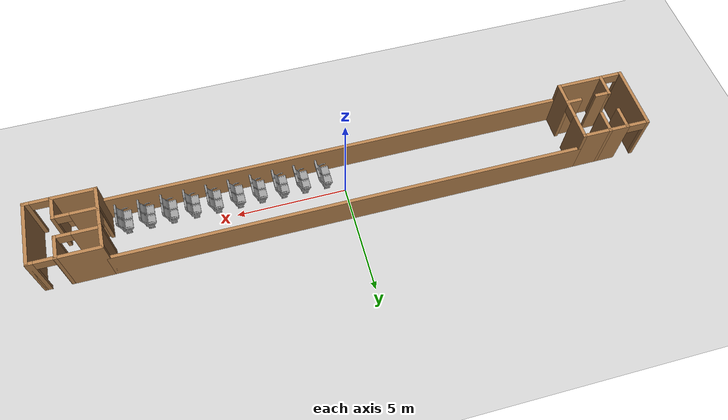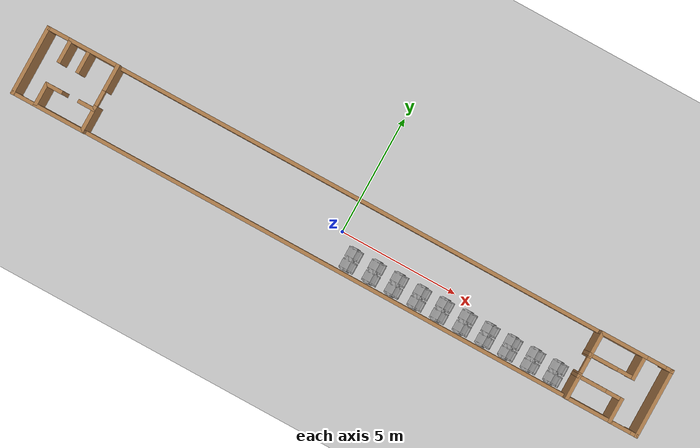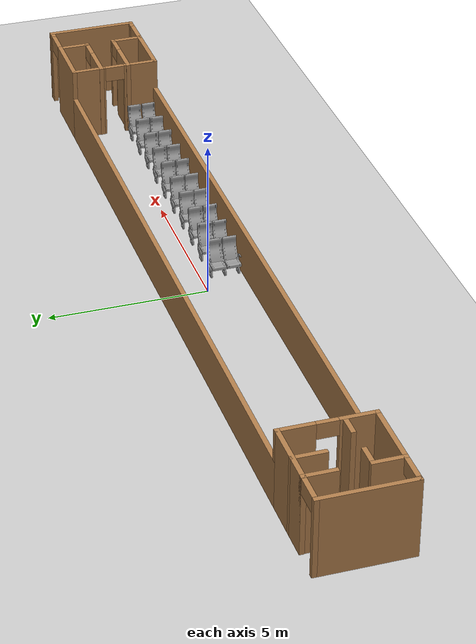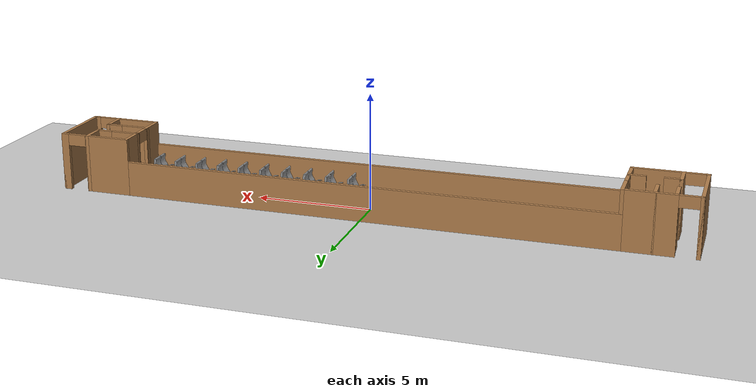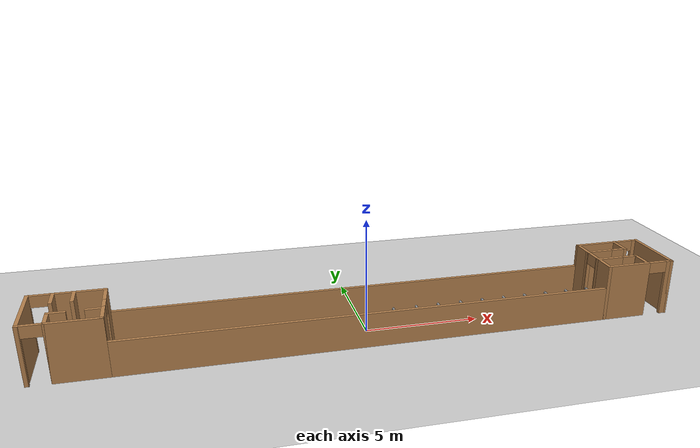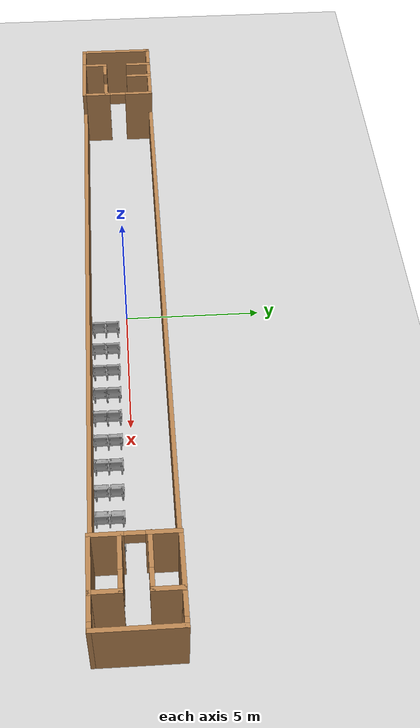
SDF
<sdf version="1.7">
 <world name="default">
  <model name="ground_plane">
   <static>1</static>
   <link name="link">
    <collision name="collision">
     <geometry><plane><normal>0 0 1</normal><size>100 100</size></plane></geometry>
     <surface><friction><ode><mu>100</mu><mu2>50</mu2></ode></friction></surface>
    </collision>
    <visual name="visual">
     <cast_shadows>0</cast_shadows>
     <geometry><plane><normal>0 0 1</normal><size>100 100</size></plane></geometry>
     <material>
      <script><uri>file://media/materials/scripts/gazebo.material</uri><name>Gazebo/Grey</name></script>
     </material>
    </visual>
   </link>
  </model>
  <model name="tejas_train">
   <pose>0.005564 0.000165 0 0 -0 0</pose>
   <link name="Wall_11">
    <pose>-10.5 0 0 0 -0 -1.5708</pose>
    <visual name="Wall_11_Visual_0">
     <pose>-0.902332 0 1.25 0 -0 0</pose>
     <geometry><box><size>1.14533 0.15 2.5</size></box></geometry>
     <material>
      <script><uri>file://media/materials/scripts/gazebo.material</uri><name>Gazebo/Wood</name></script>
      <ambient>1 1 1 1</ambient>
     </material>
     <meta><layer>0</layer></meta>
    </visual>
    <collision name="Wall_11_Collision_0">
     <geometry><box><size>1.14533 0.15 2.5</size></box></geometry>
     <pose>-0.902332 0 1.25 0 -0 0</pose>
    </collision>
    <visual name="Wall_11_Visual_1">
     <pose>0.897668 0 1.25 0 -0 0</pose>
     <geometry><box><size>1.15467 0.15 2.5</size></box></geometry>
     <material>
      <script><uri>file://media/materials/scripts/gazebo.material</uri><name>Gazebo/Wood</name></script>
      <ambient>1 1 1 1</ambient>
     </material>
     <meta><layer>0</layer></meta>
    </visual>
    <collision name="Wall_11_Collision_1">
     <geometry><box><size>1.15467 0.15 2.5</size></box></geometry>
     <pose>0.897668 0 1.25 0 -0 0</pose>
    </collision>
    <visual name="Wall_11_Visual_2">
     <pose>-0.004665 0 2.25 0 -0 0</pose>
     <geometry><box><size>0.65 0.15 0.5</size></box></geometry>
     <material>
      <script><uri>file://media/materials/scripts/gazebo.material</uri><name>Gazebo/Wood</name></script>
      <ambient>1 1 1 1</ambient>
     </material>
     <meta><layer>0</layer></meta>
    </visual>
    <collision name="Wall_11_Collision_2">
     <geometry><box><size>0.65 0.15 0.5</size></box></geometry>
     <pose>-0.004665 0 2.25 0 -0 0</pose>
    </collision>
   </link>
   <link name="Wall_13">
    <pose>10.5 0 0 0 -0 -1.5708</pose>
    <visual name="Wall_13_Visual_0">
     <pose>-0.902332 0 1.25 0 -0 0</pose>
     <geometry><box><size>1.14533 0.15 2.5</size></box></geometry>
     <material>
      <script><uri>file://media/materials/scripts/gazebo.material</uri><name>Gazebo/Wood</name></script>
      <ambient>1 1 1 1</ambient>
     </material>
     <meta><layer>0</layer></meta>
    </visual>
    <collision name="Wall_13_Collision_0">
     <geometry><box><size>1.14533 0.15 2.5</size></box></geometry>
     <pose>-0.902332 0 1.25 0 -0 0</pose>
    </collision>
    <visual name="Wall_13_Visual_1">
     <pose>0.897668 0 1.25 0 -0 0</pose>
     <geometry><box><size>1.15467 0.15 2.5</size></box></geometry>
     <material>
      <script><uri>file://media/materials/scripts/gazebo.material</uri><name>Gazebo/Wood</name></script>
      <ambient>1 1 1 1</ambient>
     </material>
     <meta><layer>0</layer></meta>
    </visual>
    <collision name="Wall_13_Collision_1">
     <geometry><box><size>1.15467 0.15 2.5</size></box></geometry>
     <pose>0.897668 0 1.25 0 -0 0</pose>
    </collision>
    <visual name="Wall_13_Visual_2">
     <pose>-0.004665 0 2.25 0 -0 0</pose>
     <geometry><box><size>0.65 0.15 0.5</size></box></geometry>
     <material>
      <script><uri>file://media/materials/scripts/gazebo.material</uri><name>Gazebo/Wood</name></script>
      <ambient>1 1 1 1</ambient>
     </material>
     <meta><layer>0</layer></meta>
    </visual>
    <collision name="Wall_13_Collision_2">
     <geometry><box><size>0.65 0.15 0.5</size></box></geometry>
     <pose>-0.004665 0 2.25 0 -0 0</pose>
    </collision>
   </link>
   <link name="Wall_15">
    <pose>-12 1.4 0 0 -0 3.14159</pose>
    <visual name="Wall_15_Visual_0">
     <pose>-0.479459 0 1.25 0 -0 0</pose>
     <geometry><box><size>2.19108 0.15 2.5</size></box></geometry>
     <material>
      <script><uri>file://media/materials/scripts/gazebo.material</uri><name>Gazebo/Wood</name></script>
      <ambient>1 1 1 1</ambient>
     </material>
     <meta><layer>0</layer></meta>
    </visual>
    <collision name="Wall_15_Collision_0">
     <geometry><box><size>2.19108 0.15 2.5</size></box></geometry>
     <pose>-0.479459 0 1.25 0 -0 0</pose>
    </collision>
    <visual name="Wall_15_Visual_1">
     <pose>1.49554 0 1.25 0 -0 0</pose>
     <geometry><box><size>0.158918 0.15 2.5</size></box></geometry>
     <material>
      <script><uri>file://media/materials/scripts/gazebo.material</uri><name>Gazebo/Wood</name></script>
      <ambient>1 1 1 1</ambient>
     </material>
     <meta><layer>0</layer></meta>
    </visual>
    <collision name="Wall_15_Collision_1">
     <geometry><box><size>0.158918 0.15 2.5</size></box></geometry>
     <pose>1.49554 0 1.25 0 -0 0</pose>
    </collision>
    <visual name="Wall_15_Visual_2">
     <pose>1.01608 0 2.25 0 -0 0</pose>
     <geometry><box><size>0.8 0.15 0.5</size></box></geometry>
     <material>
      <script><uri>file://media/materials/scripts/gazebo.material</uri><name>Gazebo/Wood</name></script>
      <ambient>1 1 1 1</ambient>
     </material>
     <meta><layer>0</layer></meta>
    </visual>
    <collision name="Wall_15_Collision_2">
     <geometry><box><size>0.8 0.15 0.5</size></box></geometry>
     <pose>1.01608 0 2.25 0 -0 0</pose>
    </collision>
   </link>
   <link name="Wall_17">
    <pose>-12 -1.4 0 0 -0 3.14159</pose>
    <visual name="Wall_17_Visual_0">
     <pose>-0.487891 0 1.25 0 -0 0</pose>
     <geometry><box><size>2.17422 0.15 2.5</size></box></geometry>
     <material>
      <script><uri>file://media/materials/scripts/gazebo.material</uri><name>Gazebo/Wood</name></script>
      <ambient>1 1 1 1</ambient>
     </material>
     <meta><layer>0</layer></meta>
    </visual>
    <collision name="Wall_17_Collision_0">
     <geometry><box><size>2.17422 0.15 2.5</size></box></geometry>
     <pose>-0.487891 0 1.25 0 -0 0</pose>
    </collision>
    <visual name="Wall_17_Visual_1">
     <pose>1.48711 0 1.25 0 -0 0</pose>
     <geometry><box><size>0.175782 0.15 2.5</size></box></geometry>
     <material>
      <script><uri>file://media/materials/scripts/gazebo.material</uri><name>Gazebo/Wood</name></script>
      <ambient>1 1 1 1</ambient>
     </material>
     <meta><layer>0</layer></meta>
    </visual>
    <collision name="Wall_17_Collision_1">
     <geometry><box><size>0.175782 0.15 2.5</size></box></geometry>
     <pose>1.48711 0 1.25 0 -0 0</pose>
    </collision>
    <visual name="Wall_17_Visual_2">
     <pose>0.999218 0 2.25 0 -0 0</pose>
     <geometry><box><size>0.8 0.15 0.5</size></box></geometry>
     <material>
      <script><uri>file://media/materials/scripts/gazebo.material</uri><name>Gazebo/Wood</name></script>
      <ambient>1 1 1 1</ambient>
     </material>
     <meta><layer>0</layer></meta>
    </visual>
    <collision name="Wall_17_Collision_2">
     <geometry><box><size>0.8 0.15 0.5</size></box></geometry>
     <pose>0.999218 0 2.25 0 -0 0</pose>
    </collision>
   </link>
   <link name="Wall_19">
    <collision name="Wall_19_Collision">
     <geometry><box><size>1.05 0.15 2.5</size></box></geometry>
     <pose>0 0 1.25 0 -0 0</pose>
    </collision>
    <visual name="Wall_19_Visual">
     <pose>0 0 1.25 0 -0 0</pose>
     <geometry><box><size>1.05 0.15 2.5</size></box></geometry>
     <material>
      <script><uri>file://media/materials/scripts/gazebo.material</uri><name>Gazebo/Wood</name></script>
      <ambient>1 1 1 1</ambient>
     </material>
     <meta><layer>0</layer></meta>
    </visual>
    <pose>-11.718 0.95 0 0 -0 -1.5708</pose>
   </link>
   <link name="Wall_21">
    <collision name="Wall_21_Collision">
     <geometry><box><size>1.05 0.15 2.5</size></box></geometry>
     <pose>0 0 1.25 0 -0 0</pose>
    </collision>
    <visual name="Wall_21_Visual">
     <pose>0 0 1.25 0 -0 0</pose>
     <geometry><box><size>1.05 0.15 2.5</size></box></geometry>
     <material>
      <script><uri>file://media/materials/scripts/gazebo.material</uri><name>Gazebo/Wood</name></script>
      <ambient>1 1 1 1</ambient>
     </material>
     <meta><layer>0</layer></meta>
    </visual>
    <pose>-12.527 -0.95 0 0 -0 1.5708</pose>
   </link>
   <link name="Wall_23">
    <collision name="Wall_23_Collision">
     <geometry><box><size>1.05 0.15 2.5</size></box></geometry>
     <pose>0 0 1.25 0 -0 0</pose>
    </collision>
    <visual name="Wall_23_Visual">
     <pose>0 0 1.25 0 -0 0</pose>
     <geometry><box><size>1.05 0.15 2.5</size></box></geometry>
     <material>
      <script><uri>file://media/materials/scripts/gazebo.material</uri><name>Gazebo/Wood</name></script>
      <ambient>1 1 1 1</ambient>
     </material>
     <meta><layer>0</layer></meta>
    </visual>
    <pose>-12.527 0.95 0 0 -0 -1.5708</pose>
   </link>
   <link name="Wall_27">
    <collision name="Wall_27_Collision">
     <geometry><box><size>0.75 0.15 2.5</size></box></geometry>
     <pose>0 0 1.25 0 -0 0</pose>
    </collision>
    <visual name="Wall_27_Visual">
     <pose>0 0 1.25 0 -0 0</pose>
     <geometry><box><size>0.75 0.15 2.5</size></box></geometry>
     <material>
      <script><uri>file://media/materials/scripts/gazebo.material</uri><name>Gazebo/Wood</name></script>
      <ambient>1 1 1 1</ambient>
     </material>
     <meta><layer>0</layer></meta>
    </visual>
    <pose>-12.227 -0.5 0 0 -0 0</pose>
   </link>
   <link name="Wall_29">
    <collision name="Wall_29_Collision">
     <geometry><box><size>0.75 0.15 2.5</size></box></geometry>
     <pose>0 0 1.25 0 -0 0</pose>
    </collision>
    <visual name="Wall_29_Visual">
     <pose>0 0 1.25 0 -0 0</pose>
     <geometry><box><size>0.75 0.15 2.5</size></box></geometry>
     <material>
      <script><uri>file://media/materials/scripts/gazebo.material</uri><name>Gazebo/Wood</name></script>
      <ambient>1 1 1 1</ambient>
     </material>
     <meta><layer>0</layer></meta>
    </visual>
    <pose>-10.8034 -0.478648 0 0 -0 3.14159</pose>
   </link>
   <link name="Wall_31">
    <collision name="Wall_31_Collision">
     <geometry><box><size>2.95 0.15 2.5</size></box></geometry>
     <pose>0 0 1.25 0 -0 0</pose>
    </collision>
    <visual name="Wall_31_Visual">
     <pose>0 0 1.25 0 -0 0</pose>
     <geometry><box><size>2.95 0.15 2.5</size></box></geometry>
     <material>
      <script><uri>file://media/materials/scripts/gazebo.material</uri><name>Gazebo/Wood</name></script>
      <ambient>1 1 1 1</ambient>
     </material>
     <meta><layer>0</layer></meta>
    </visual>
    <pose>-13.5 0 0 0 -0 -1.5708</pose>
   </link>
   <link name="Wall_35">
    <pose>12 1.4 0 0 -0 0</pose>
    <visual name="Wall_35_Visual_0">
     <pose>-0.569532 0 1.25 0 -0 0</pose>
     <geometry><box><size>2.01094 0.15 2.5</size></box></geometry>
     <material>
      <script><uri>file://media/materials/scripts/gazebo.material</uri><name>Gazebo/Wood</name></script>
      <ambient>1 1 1 1</ambient>
     </material>
     <meta><layer>0</layer></meta>
    </visual>
    <collision name="Wall_35_Collision_0">
     <geometry><box><size>2.01094 0.15 2.5</size></box></geometry>
     <pose>-0.569532 0 1.25 0 -0 0</pose>
    </collision>
    <visual name="Wall_35_Visual_1">
     <pose>1.40547 0 1.25 0 -0 0</pose>
     <geometry><box><size>0.339064 0.15 2.5</size></box></geometry>
     <material>
      <script><uri>file://media/materials/scripts/gazebo.material</uri><name>Gazebo/Wood</name></script>
      <ambient>1 1 1 1</ambient>
     </material>
     <meta><layer>0</layer></meta>
    </visual>
    <collision name="Wall_35_Collision_1">
     <geometry><box><size>0.339064 0.15 2.5</size></box></geometry>
     <pose>1.40547 0 1.25 0 -0 0</pose>
    </collision>
    <visual name="Wall_35_Visual_2">
     <pose>0.835936 0 2.25 0 -0 0</pose>
     <geometry><box><size>0.8 0.15 0.5</size></box></geometry>
     <material>
      <script><uri>file://media/materials/scripts/gazebo.material</uri><name>Gazebo/Wood</name></script>
      <ambient>1 1 1 1</ambient>
     </material>
     <meta><layer>0</layer></meta>
    </visual>
    <collision name="Wall_35_Collision_2">
     <geometry><box><size>0.8 0.15 0.5</size></box></geometry>
     <pose>0.835936 0 2.25 0 -0 0</pose>
    </collision>
   </link>
   <link name="Wall_37">
    <pose>12 -1.4 0 0 -0 0</pose>
    <visual name="Wall_37_Visual_0">
     <pose>-0.569532 0 1.25 0 -0 0</pose>
     <geometry><box><size>2.01094 0.15 2.5</size></box></geometry>
     <material>
      <script><uri>file://media/materials/scripts/gazebo.material</uri><name>Gazebo/Wood</name></script>
      <ambient>1 1 1 1</ambient>
     </material>
     <meta><layer>0</layer></meta>
    </visual>
    <collision name="Wall_37_Collision_0">
     <geometry><box><size>2.01094 0.15 2.5</size></box></geometry>
     <pose>-0.569532 0 1.25 0 -0 0</pose>
    </collision>
    <visual name="Wall_37_Visual_1">
     <pose>1.40547 0 1.25 0 -0 0</pose>
     <geometry><box><size>0.339064 0.15 2.5</size></box></geometry>
     <material>
      <script><uri>file://media/materials/scripts/gazebo.material</uri><name>Gazebo/Wood</name></script>
      <ambient>1 1 1 1</ambient>
     </material>
     <meta><layer>0</layer></meta>
    </visual>
    <collision name="Wall_37_Collision_1">
     <geometry><box><size>0.339064 0.15 2.5</size></box></geometry>
     <pose>1.40547 0 1.25 0 -0 0</pose>
    </collision>
    <visual name="Wall_37_Visual_2">
     <pose>0.835936 0 2.25 0 -0 0</pose>
     <geometry><box><size>0.8 0.15 0.5</size></box></geometry>
     <material>
      <script><uri>file://media/materials/scripts/gazebo.material</uri><name>Gazebo/Wood</name></script>
      <ambient>1 1 1 1</ambient>
     </material>
     <meta><layer>0</layer></meta>
    </visual>
    <collision name="Wall_37_Collision_2">
     <geometry><box><size>0.8 0.15 0.5</size></box></geometry>
     <pose>0.835936 0 2.25 0 -0 0</pose>
    </collision>
   </link>
   <link name="Wall_39">
    <pose>11.417 0.466 0 0 -0 0</pose>
    <visual name="Wall_39_Visual_0">
     <pose>-0.378988 0 1.25 0 -0 0</pose>
     <geometry><box><size>1.24202 0.15 2.5</size></box></geometry>
     <material>
      <script><uri>file://media/materials/scripts/gazebo.material</uri><name>Gazebo/Wood</name></script>
      <ambient>1 1 1 1</ambient>
     </material>
     <meta><layer>0</layer></meta>
    </visual>
    <collision name="Wall_39_Collision_0">
     <geometry><box><size>1.24202 0.15 2.5</size></box></geometry>
     <pose>-0.378988 0 1.25 0 -0 0</pose>
    </collision>
    <visual name="Wall_39_Visual_1">
     <pose>0.921012 0 1.25 0 -0 0</pose>
     <geometry><box><size>0.157975 0.15 2.5</size></box></geometry>
     <material>
      <script><uri>file://media/materials/scripts/gazebo.material</uri><name>Gazebo/Wood</name></script>
      <ambient>1 1 1 1</ambient>
     </material>
     <meta><layer>0</layer></meta>
    </visual>
    <collision name="Wall_39_Collision_1">
     <geometry><box><size>0.157975 0.15 2.5</size></box></geometry>
     <pose>0.921012 0 1.25 0 -0 0</pose>
    </collision>
    <visual name="Wall_39_Visual_2">
     <pose>0.542025 0 2.25 0 -0 0</pose>
     <geometry><box><size>0.6 0.15 0.5</size></box></geometry>
     <material>
      <script><uri>file://media/materials/scripts/gazebo.material</uri><name>Gazebo/Wood</name></script>
      <ambient>1 1 1 1</ambient>
     </material>
     <meta><layer>0</layer></meta>
    </visual>
    <collision name="Wall_39_Collision_2">
     <geometry><box><size>0.6 0.15 0.5</size></box></geometry>
     <pose>0.542025 0 2.25 0 -0 0</pose>
    </collision>
   </link>
   <link name="Wall_40">
    <collision name="Wall_40_Collision">
     <geometry><box><size>1.084 0.15 2.5</size></box></geometry>
     <pose>0 0 1.25 0 -0 0</pose>
    </collision>
    <visual name="Wall_40_Visual">
     <pose>0 0 1.25 0 -0 0</pose>
     <geometry><box><size>1.084 0.15 2.5</size></box></geometry>
     <material>
      <script><uri>file://media/materials/scripts/gazebo.material</uri><name>Gazebo/Wood</name></script>
      <ambient>1 1 1 1</ambient>
     </material>
     <meta><layer>0</layer></meta>
    </visual>
    <pose>12.342 0.933 0 0 -0 1.5708</pose>
   </link>
   <link name="Wall_42">
    <pose>11.417 -0.466 0 0 -0 0</pose>
    <visual name="Wall_42_Visual_0">
     <pose>-0.378988 0 1.25 0 -0 0</pose>
     <geometry><box><size>1.24202 0.15 2.5</size></box></geometry>
     <material>
      <script><uri>file://media/materials/scripts/gazebo.material</uri><name>Gazebo/Wood</name></script>
      <ambient>1 1 1 1</ambient>
     </material>
     <meta><layer>0</layer></meta>
    </visual>
    <collision name="Wall_42_Collision_0">
     <geometry><box><size>1.24202 0.15 2.5</size></box></geometry>
     <pose>-0.378988 0 1.25 0 -0 0</pose>
    </collision>
    <visual name="Wall_42_Visual_1">
     <pose>0.921012 0 1.25 0 -0 0</pose>
     <geometry><box><size>0.157975 0.15 2.5</size></box></geometry>
     <material>
      <script><uri>file://media/materials/scripts/gazebo.material</uri><name>Gazebo/Wood</name></script>
      <ambient>1 1 1 1</ambient>
     </material>
     <meta><layer>0</layer></meta>
    </visual>
    <collision name="Wall_42_Collision_1">
     <geometry><box><size>0.157975 0.15 2.5</size></box></geometry>
     <pose>0.921012 0 1.25 0 -0 0</pose>
    </collision>
    <visual name="Wall_42_Visual_2">
     <pose>0.542025 0 2.25 0 -0 0</pose>
     <geometry><box><size>0.6 0.15 0.5</size></box></geometry>
     <material>
      <script><uri>file://media/materials/scripts/gazebo.material</uri><name>Gazebo/Wood</name></script>
      <ambient>1 1 1 1</ambient>
     </material>
     <meta><layer>0</layer></meta>
    </visual>
    <collision name="Wall_42_Collision_2">
     <geometry><box><size>0.6 0.15 0.5</size></box></geometry>
     <pose>0.542025 0 2.25 0 -0 0</pose>
    </collision>
   </link>
   <link name="Wall_43">
    <collision name="Wall_43_Collision">
     <geometry><box><size>1.08072 0.15 2.5</size></box></geometry>
     <pose>0 0 1.25 0 -0 0</pose>
    </collision>
    <visual name="Wall_43_Visual">
     <pose>0 0 1.25 0 -0 0</pose>
     <geometry><box><size>1.08072 0.15 2.5</size></box></geometry>
     <material>
      <script><uri>file://media/materials/scripts/gazebo.material</uri><name>Gazebo/Wood</name></script>
      <ambient>1 1 1 1</ambient>
     </material>
     <meta><layer>0</layer></meta>
    </visual>
    <pose>12.342 -0.931 0 0 -0 -1.5708</pose>
   </link>
   <link name="Wall_45">
    <collision name="Wall_45_Collision">
     <geometry><box><size>2.95 0.15 2.5</size></box></geometry>
     <pose>0 0 1.25 0 -0 0</pose>
    </collision>
    <visual name="Wall_45_Visual">
     <pose>0 0 1.25 0 -0 0</pose>
     <geometry><box><size>2.95 0.15 2.5</size></box></geometry>
     <material>
      <script><uri>file://media/materials/scripts/gazebo.material</uri><name>Gazebo/Wood</name></script>
      <ambient>1 1 1 1</ambient>
     </material>
     <meta><layer>0</layer></meta>
    </visual>
    <pose>13.5 0 0 0 -0 -1.5708</pose>
   </link>
   <link name="Wall_7">
    <collision name="Wall_7_Collision">
     <geometry><box><size>21.15 0.15 1.5</size></box></geometry>
     <pose>0 0 0.75 0 -0 0</pose>
    </collision>
    <visual name="Wall_7_Visual">
     <pose>0 0 0.75 0 -0 0</pose>
     <geometry><box><size>21.15 0.15 1.5</size></box></geometry>
     <material>
      <script><uri>file://media/materials/scripts/gazebo.material</uri><name>Gazebo/Wood</name></script>
      <ambient>1 1 1 1</ambient>
     </material>
     <meta><layer>0</layer></meta>
    </visual>
    <pose>0 1.4 0 0 -0 0</pose>
   </link>
   <link name="Wall_9">
    <collision name="Wall_9_Collision">
     <geometry><box><size>21.15 0.15 1.5</size></box></geometry>
     <pose>0 0 0.75 0 -0 0</pose>
    </collision>
    <visual name="Wall_9_Visual">
     <pose>0 0 0.75 0 -0 0</pose>
     <geometry><box><size>21.15 0.15 1.5</size></box></geometry>
     <material>
      <script><uri>file://media/materials/scripts/gazebo.material</uri><name>Gazebo/Wood</name></script>
      <ambient>1 1 1 1</ambient>
     </material>
     <meta><layer>0</layer></meta>
    </visual>
    <pose>0 -1.4 0 0 -0 0</pose>
   </link>
   <static>1</static>
  </model>
  <model name="seat_10_1">
   <model name="seat">
    <link name="link_0">
     <inertial>
      <mass>1</mass>
      <inertia>
       <ixx>0.166667</ixx>
       <ixy>0</ixy>
       <ixz>0</ixz>
       <iyy>0.166667</iyy>
       <iyz>0</iyz>
       <izz>0.166667</izz>
      </inertia>
     </inertial>
     <visual name="visual">
      <pose>-0.3 -0.5 0 0 -0 0</pose>
      <geometry><mesh><uri>model://seat1/meshes/seat1.stl</uri><scale>0.001 0.001 0.001</scale></mesh></geometry>
      <material>
       <lighting>1</lighting>
       <script><uri>file://media/materials/scripts/gazebo.material</uri><name>Gazebo/Grey</name></script>
       <shader type="pixel"><normal_map>__default__</normal_map></shader>
       <ambient>0.3 0.3 0.3 1</ambient>
       <diffuse>0.7 0.7 0.7 1</diffuse>
       <specular>0.01 0.01 0.01 1</specular>
       <emissive>0 0 0 1</emissive>
      </material>
     </visual>
     <collision name="collision">
      <pose>-0.3 -0.5 0 0 -0 0</pose>
      <geometry><mesh><uri>model://seat1/meshes/seat1.stl</uri><scale>0.001 0.001 0.001</scale></mesh></geometry>
      <surface>
       <friction>
        <ode><mu>10000</mu><mu2>10000</mu2><fdir1>0 0 0</fdir1><slip1>0</slip1><slip2>0</slip2></ode>
        <torsional>
         <coefficient>1</coefficient>
         <patch_radius>0</patch_radius>
         <surface_radius>0</surface_radius>
         <use_patch_radius>1</use_patch_radius>
         <ode><slip>0</slip></ode>
        </torsional>
       </friction>
       <bounce><restitution_coefficient>0</restitution_coefficient><threshold>1e+06</threshold></bounce>
       <contact>
        <collide_without_contact>0</collide_without_contact>
        <collide_without_contact_bitmask>1</collide_without_contact_bitmask>
        <collide_bitmask>1</collide_bitmask>
        <ode>
         <soft_cfm>0</soft_cfm>
         <soft_erp>0.2</soft_erp>
         <kp>1e+13</kp>
         <kd>1</kd>
         <max_vel>0.01</max_vel>
         <min_depth>0</min_depth>
        </ode>
        <bullet>
         <split_impulse>1</split_impulse>
         <split_impulse_penetration_threshold>-0.01</split_impulse_penetration_threshold>
         <soft_cfm>0</soft_cfm>
         <soft_erp>0.2</soft_erp>
         <kp>1e+13</kp>
         <kd>1</kd>
        </bullet>
       </contact>
      </surface>
     </collision>
    </link>
    <static>0</static>
    <pose>-4.49906 0.001451 0 0 -0 0</pose>
   </model>
   <model name="seat_0">
    <link name="link_0">
     <inertial>
      <mass>1</mass>
      <inertia>
       <ixx>0.166667</ixx>
       <ixy>0</ixy>
       <ixz>0</ixz>
       <iyy>0.166667</iyy>
       <iyz>0</iyz>
       <izz>0.166667</izz>
      </inertia>
     </inertial>
     <visual name="visual">
      <pose>-0.3 -0.5 0 0 -0 0</pose>
      <geometry><mesh><uri>model://seat1/meshes/seat1.stl</uri><scale>0.001 0.001 0.001</scale></mesh></geometry>
      <material>
       <lighting>1</lighting>
       <script><uri>file://media/materials/scripts/gazebo.material</uri><name>Gazebo/Grey</name></script>
       <shader type="pixel"><normal_map>__default__</normal_map></shader>
       <ambient>0.3 0.3 0.3 1</ambient>
       <diffuse>0.7 0.7 0.7 1</diffuse>
       <specular>0.01 0.01 0.01 1</specular>
       <emissive>0 0 0 1</emissive>
      </material>
     </visual>
     <collision name="collision">
      <pose>-0.3 -0.5 0 0 -0 0</pose>
      <geometry><mesh><uri>model://seat1/meshes/seat1.stl</uri><scale>0.001 0.001 0.001</scale></mesh></geometry>
      <surface>
       <friction>
        <ode><mu>10000</mu><mu2>10000</mu2><fdir1>0 0 0</fdir1><slip1>0</slip1><slip2>0</slip2></ode>
        <torsional>
         <coefficient>1</coefficient>
         <patch_radius>0</patch_radius>
         <surface_radius>0</surface_radius>
         <use_patch_radius>1</use_patch_radius>
         <ode><slip>0</slip></ode>
        </torsional>
       </friction>
       <bounce><restitution_coefficient>0</restitution_coefficient><threshold>1e+06</threshold></bounce>
       <contact>
        <collide_without_contact>0</collide_without_contact>
        <collide_without_contact_bitmask>1</collide_without_contact_bitmask>
        <collide_bitmask>1</collide_bitmask>
        <ode>
         <soft_cfm>0</soft_cfm>
         <soft_erp>0.2</soft_erp>
         <kp>1e+13</kp>
         <kd>1</kd>
         <max_vel>0.01</max_vel>
         <min_depth>0</min_depth>
        </ode>
        <bullet>
         <split_impulse>1</split_impulse>
         <split_impulse_penetration_threshold>-0.01</split_impulse_penetration_threshold>
         <soft_cfm>0</soft_cfm>
         <soft_erp>0.2</soft_erp>
         <kp>1e+13</kp>
         <kd>1</kd>
        </bullet>
       </contact>
      </surface>
     </collision>
    </link>
    <static>0</static>
    <pose>-3.50213 0.000104 0 0 -0 0</pose>
   </model>
   <model name="seat_1">
    <link name="link_0">
     <inertial>
      <mass>1</mass>
      <inertia>
       <ixx>0.166667</ixx>
       <ixy>0</ixy>
       <ixz>0</ixz>
       <iyy>0.166667</iyy>
       <iyz>0</iyz>
       <izz>0.166667</izz>
      </inertia>
     </inertial>
     <visual name="visual">
      <pose>-0.3 -0.5 0 0 -0 0</pose>
      <geometry><mesh><uri>model://seat1/meshes/seat1.stl</uri><scale>0.001 0.001 0.001</scale></mesh></geometry>
      <material>
       <lighting>1</lighting>
       <script><uri>file://media/materials/scripts/gazebo.material</uri><name>Gazebo/Grey</name></script>
       <shader type="pixel"><normal_map>__default__</normal_map></shader>
       <ambient>0.3 0.3 0.3 1</ambient>
       <diffuse>0.7 0.7 0.7 1</diffuse>
       <specular>0.01 0.01 0.01 1</specular>
       <emissive>0 0 0 1</emissive>
      </material>
     </visual>
     <collision name="collision">
      <pose>-0.3 -0.5 0 0 -0 0</pose>
      <geometry><mesh><uri>model://seat1/meshes/seat1.stl</uri><scale>0.001 0.001 0.001</scale></mesh></geometry>
      <surface>
       <friction>
        <ode><mu>10000</mu><mu2>10000</mu2><fdir1>0 0 0</fdir1><slip1>0</slip1><slip2>0</slip2></ode>
        <torsional>
         <coefficient>1</coefficient>
         <patch_radius>0</patch_radius>
         <surface_radius>0</surface_radius>
         <use_patch_radius>1</use_patch_radius>
         <ode><slip>0</slip></ode>
        </torsional>
       </friction>
       <bounce><restitution_coefficient>0</restitution_coefficient><threshold>1e+06</threshold></bounce>
       <contact>
        <collide_without_contact>0</collide_without_contact>
        <collide_without_contact_bitmask>1</collide_without_contact_bitmask>
        <collide_bitmask>1</collide_bitmask>
        <ode>
         <soft_cfm>0</soft_cfm>
         <soft_erp>0.2</soft_erp>
         <kp>1e+13</kp>
         <kd>1</kd>
         <max_vel>0.01</max_vel>
         <min_depth>0</min_depth>
        </ode>
        <bullet>
         <split_impulse>1</split_impulse>
         <split_impulse_penetration_threshold>-0.01</split_impulse_penetration_threshold>
         <soft_cfm>0</soft_cfm>
         <soft_erp>0.2</soft_erp>
         <kp>1e+13</kp>
         <kd>1</kd>
        </bullet>
       </contact>
      </surface>
     </collision>
    </link>
    <static>0</static>
    <pose>-2.50166 -0.002281 0 0 -0 0</pose>
   </model>
   <model name="seat_2">
    <link name="link_0">
     <inertial>
      <mass>1</mass>
      <inertia>
       <ixx>0.166667</ixx>
       <ixy>0</ixy>
       <ixz>0</ixz>
       <iyy>0.166667</iyy>
       <iyz>0</iyz>
       <izz>0.166667</izz>
      </inertia>
     </inertial>
     <visual name="visual">
      <pose>-0.3 -0.5 0 0 -0 0</pose>
      <geometry><mesh><uri>model://seat1/meshes/seat1.stl</uri><scale>0.001 0.001 0.001</scale></mesh></geometry>
      <material>
       <lighting>1</lighting>
       <script><uri>file://media/materials/scripts/gazebo.material</uri><name>Gazebo/Grey</name></script>
       <shader type="pixel"><normal_map>__default__</normal_map></shader>
       <ambient>0.3 0.3 0.3 1</ambient>
       <diffuse>0.7 0.7 0.7 1</diffuse>
       <specular>0.01 0.01 0.01 1</specular>
       <emissive>0 0 0 1</emissive>
      </material>
     </visual>
     <collision name="collision">
      <pose>-0.3 -0.5 0 0 -0 0</pose>
      <geometry><mesh><uri>model://seat1/meshes/seat1.stl</uri><scale>0.001 0.001 0.001</scale></mesh></geometry>
      <surface>
       <friction>
        <ode><mu>10000</mu><mu2>10000</mu2><fdir1>0 0 0</fdir1><slip1>0</slip1><slip2>0</slip2></ode>
        <torsional>
         <coefficient>1</coefficient>
         <patch_radius>0</patch_radius>
         <surface_radius>0</surface_radius>
         <use_patch_radius>1</use_patch_radius>
         <ode><slip>0</slip></ode>
        </torsional>
       </friction>
       <bounce><restitution_coefficient>0</restitution_coefficient><threshold>1e+06</threshold></bounce>
       <contact>
        <collide_without_contact>0</collide_without_contact>
        <collide_without_contact_bitmask>1</collide_without_contact_bitmask>
        <collide_bitmask>1</collide_bitmask>
        <ode>
         <soft_cfm>0</soft_cfm>
         <soft_erp>0.2</soft_erp>
         <kp>1e+13</kp>
         <kd>1</kd>
         <max_vel>0.01</max_vel>
         <min_depth>0</min_depth>
        </ode>
        <bullet>
         <split_impulse>1</split_impulse>
         <split_impulse_penetration_threshold>-0.01</split_impulse_penetration_threshold>
         <soft_cfm>0</soft_cfm>
         <soft_erp>0.2</soft_erp>
         <kp>1e+13</kp>
         <kd>1</kd>
        </bullet>
       </contact>
      </surface>
     </collision>
    </link>
    <static>0</static>
    <pose>-1.49886 -0.001439 0 0 -0 0</pose>
   </model>
   <model name="seat_3">
    <link name="link_0">
     <inertial>
      <mass>1</mass>
      <inertia>
       <ixx>0.166667</ixx>
       <ixy>0</ixy>
       <ixz>0</ixz>
       <iyy>0.166667</iyy>
       <iyz>0</iyz>
       <izz>0.166667</izz>
      </inertia>
     </inertial>
     <visual name="visual">
      <pose>-0.3 -0.5 0 0 -0 0</pose>
      <geometry><mesh><uri>model://seat1/meshes/seat1.stl</uri><scale>0.001 0.001 0.001</scale></mesh></geometry>
      <material>
       <lighting>1</lighting>
       <script><uri>file://media/materials/scripts/gazebo.material</uri><name>Gazebo/Grey</name></script>
       <shader type="pixel"><normal_map>__default__</normal_map></shader>
       <ambient>0.3 0.3 0.3 1</ambient>
       <diffuse>0.7 0.7 0.7 1</diffuse>
       <specular>0.01 0.01 0.01 1</specular>
       <emissive>0 0 0 1</emissive>
      </material>
     </visual>
     <collision name="collision">
      <pose>-0.3 -0.5 0 0 -0 0</pose>
      <geometry><mesh><uri>model://seat1/meshes/seat1.stl</uri><scale>0.001 0.001 0.001</scale></mesh></geometry>
      <surface>
       <friction>
        <ode><mu>10000</mu><mu2>10000</mu2><fdir1>0 0 0</fdir1><slip1>0</slip1><slip2>0</slip2></ode>
        <torsional>
         <coefficient>1</coefficient>
         <patch_radius>0</patch_radius>
         <surface_radius>0</surface_radius>
         <use_patch_radius>1</use_patch_radius>
         <ode><slip>0</slip></ode>
        </torsional>
       </friction>
       <bounce><restitution_coefficient>0</restitution_coefficient><threshold>1e+06</threshold></bounce>
       <contact>
        <collide_without_contact>0</collide_without_contact>
        <collide_without_contact_bitmask>1</collide_without_contact_bitmask>
        <collide_bitmask>1</collide_bitmask>
        <ode>
         <soft_cfm>0</soft_cfm>
         <soft_erp>0.2</soft_erp>
         <kp>1e+13</kp>
         <kd>1</kd>
         <max_vel>0.01</max_vel>
         <min_depth>0</min_depth>
        </ode>
        <bullet>
         <split_impulse>1</split_impulse>
         <split_impulse_penetration_threshold>-0.01</split_impulse_penetration_threshold>
         <soft_cfm>0</soft_cfm>
         <soft_erp>0.2</soft_erp>
         <kp>1e+13</kp>
         <kd>1</kd>
        </bullet>
       </contact>
      </surface>
     </collision>
    </link>
    <static>0</static>
    <pose>-0.502503 -0.001106 0 0 -0 0</pose>
   </model>
   <model name="seat_4">
    <link name="link_0">
     <inertial>
      <mass>1</mass>
      <inertia>
       <ixx>0.166667</ixx>
       <ixy>0</ixy>
       <ixz>0</ixz>
       <iyy>0.166667</iyy>
       <iyz>0</iyz>
       <izz>0.166667</izz>
      </inertia>
     </inertial>
     <visual name="visual">
      <pose>-0.3 -0.5 0 0 -0 0</pose>
      <geometry><mesh><uri>model://seat1/meshes/seat1.stl</uri><scale>0.001 0.001 0.001</scale></mesh></geometry>
      <material>
       <lighting>1</lighting>
       <script><uri>file://media/materials/scripts/gazebo.material</uri><name>Gazebo/Grey</name></script>
       <shader type="pixel"><normal_map>__default__</normal_map></shader>
       <ambient>0.3 0.3 0.3 1</ambient>
       <diffuse>0.7 0.7 0.7 1</diffuse>
       <specular>0.01 0.01 0.01 1</specular>
       <emissive>0 0 0 1</emissive>
      </material>
     </visual>
     <collision name="collision">
      <pose>-0.3 -0.5 0 0 -0 0</pose>
      <geometry><mesh><uri>model://seat1/meshes/seat1.stl</uri><scale>0.001 0.001 0.001</scale></mesh></geometry>
      <surface>
       <friction>
        <ode><mu>10000</mu><mu2>10000</mu2><fdir1>0 0 0</fdir1><slip1>0</slip1><slip2>0</slip2></ode>
        <torsional>
         <coefficient>1</coefficient>
         <patch_radius>0</patch_radius>
         <surface_radius>0</surface_radius>
         <use_patch_radius>1</use_patch_radius>
         <ode><slip>0</slip></ode>
        </torsional>
       </friction>
       <bounce><restitution_coefficient>0</restitution_coefficient><threshold>1e+06</threshold></bounce>
       <contact>
        <collide_without_contact>0</collide_without_contact>
        <collide_without_contact_bitmask>1</collide_without_contact_bitmask>
        <collide_bitmask>1</collide_bitmask>
        <ode>
         <soft_cfm>0</soft_cfm>
         <soft_erp>0.2</soft_erp>
         <kp>1e+13</kp>
         <kd>1</kd>
         <max_vel>0.01</max_vel>
         <min_depth>0</min_depth>
        </ode>
        <bullet>
         <split_impulse>1</split_impulse>
         <split_impulse_penetration_threshold>-0.01</split_impulse_penetration_threshold>
         <soft_cfm>0</soft_cfm>
         <soft_erp>0.2</soft_erp>
         <kp>1e+13</kp>
         <kd>1</kd>
        </bullet>
       </contact>
      </surface>
     </collision>
    </link>
    <static>0</static>
    <pose>0.499248 0.004347 0 0 -0 0</pose>
   </model>
   <model name="seat_5">
    <link name="link_0">
     <inertial>
      <mass>1</mass>
      <inertia>
       <ixx>0.166667</ixx>
       <ixy>0</ixy>
       <ixz>0</ixz>
       <iyy>0.166667</iyy>
       <iyz>0</iyz>
       <izz>0.166667</izz>
      </inertia>
     </inertial>
     <visual name="visual">
      <pose>-0.3 -0.5 0 0 -0 0</pose>
      <geometry><mesh><uri>model://seat1/meshes/seat1.stl</uri><scale>0.001 0.001 0.001</scale></mesh></geometry>
      <material>
       <lighting>1</lighting>
       <script><uri>file://media/materials/scripts/gazebo.material</uri><name>Gazebo/Grey</name></script>
       <shader type="pixel"><normal_map>__default__</normal_map></shader>
       <ambient>0.3 0.3 0.3 1</ambient>
       <diffuse>0.7 0.7 0.7 1</diffuse>
       <specular>0.01 0.01 0.01 1</specular>
       <emissive>0 0 0 1</emissive>
      </material>
     </visual>
     <collision name="collision">
      <pose>-0.3 -0.5 0 0 -0 0</pose>
      <geometry><mesh><uri>model://seat1/meshes/seat1.stl</uri><scale>0.001 0.001 0.001</scale></mesh></geometry>
      <surface>
       <friction>
        <ode><mu>10000</mu><mu2>10000</mu2><fdir1>0 0 0</fdir1><slip1>0</slip1><slip2>0</slip2></ode>
        <torsional>
         <coefficient>1</coefficient>
         <patch_radius>0</patch_radius>
         <surface_radius>0</surface_radius>
         <use_patch_radius>1</use_patch_radius>
         <ode><slip>0</slip></ode>
        </torsional>
       </friction>
       <bounce><restitution_coefficient>0</restitution_coefficient><threshold>1e+06</threshold></bounce>
       <contact>
        <collide_without_contact>0</collide_without_contact>
        <collide_without_contact_bitmask>1</collide_without_contact_bitmask>
        <collide_bitmask>1</collide_bitmask>
        <ode>
         <soft_cfm>0</soft_cfm>
         <soft_erp>0.2</soft_erp>
         <kp>1e+13</kp>
         <kd>1</kd>
         <max_vel>0.01</max_vel>
         <min_depth>0</min_depth>
        </ode>
        <bullet>
         <split_impulse>1</split_impulse>
         <split_impulse_penetration_threshold>-0.01</split_impulse_penetration_threshold>
         <soft_cfm>0</soft_cfm>
         <soft_erp>0.2</soft_erp>
         <kp>1e+13</kp>
         <kd>1</kd>
        </bullet>
       </contact>
      </surface>
     </collision>
    </link>
    <static>0</static>
    <pose>1.49969 0.0043 0 0 -0 0</pose>
   </model>
   <model name="seat_6">
    <link name="link_0">
     <inertial>
      <mass>1</mass>
      <inertia>
       <ixx>0.166667</ixx>
       <ixy>0</ixy>
       <ixz>0</ixz>
       <iyy>0.166667</iyy>
       <iyz>0</iyz>
       <izz>0.166667</izz>
      </inertia>
     </inertial>
     <visual name="visual">
      <pose>-0.3 -0.5 0 0 -0 0</pose>
      <geometry><mesh><uri>model://seat1/meshes/seat1.stl</uri><scale>0.001 0.001 0.001</scale></mesh></geometry>
      <material>
       <lighting>1</lighting>
       <script><uri>file://media/materials/scripts/gazebo.material</uri><name>Gazebo/Grey</name></script>
       <shader type="pixel"><normal_map>__default__</normal_map></shader>
       <ambient>0.3 0.3 0.3 1</ambient>
       <diffuse>0.7 0.7 0.7 1</diffuse>
       <specular>0.01 0.01 0.01 1</specular>
       <emissive>0 0 0 1</emissive>
      </material>
     </visual>
     <collision name="collision">
      <pose>-0.3 -0.5 0 0 -0 0</pose>
      <geometry><mesh><uri>model://seat1/meshes/seat1.stl</uri><scale>0.001 0.001 0.001</scale></mesh></geometry>
      <surface>
       <friction>
        <ode><mu>10000</mu><mu2>10000</mu2><fdir1>0 0 0</fdir1><slip1>0</slip1><slip2>0</slip2></ode>
        <torsional>
         <coefficient>1</coefficient>
         <patch_radius>0</patch_radius>
         <surface_radius>0</surface_radius>
         <use_patch_radius>1</use_patch_radius>
         <ode><slip>0</slip></ode>
        </torsional>
       </friction>
       <bounce><restitution_coefficient>0</restitution_coefficient><threshold>1e+06</threshold></bounce>
       <contact>
        <collide_without_contact>0</collide_without_contact>
        <collide_without_contact_bitmask>1</collide_without_contact_bitmask>
        <collide_bitmask>1</collide_bitmask>
        <ode>
         <soft_cfm>0</soft_cfm>
         <soft_erp>0.2</soft_erp>
         <kp>1e+13</kp>
         <kd>1</kd>
         <max_vel>0.01</max_vel>
         <min_depth>0</min_depth>
        </ode>
        <bullet>
         <split_impulse>1</split_impulse>
         <split_impulse_penetration_threshold>-0.01</split_impulse_penetration_threshold>
         <soft_cfm>0</soft_cfm>
         <soft_erp>0.2</soft_erp>
         <kp>1e+13</kp>
         <kd>1</kd>
        </bullet>
       </contact>
      </surface>
     </collision>
    </link>
    <static>0</static>
    <pose>2.50992 -0.000349 0 0 -0 0</pose>
   </model>
   <model name="seat_7">
    <link name="link_0">
     <inertial>
      <mass>1</mass>
      <inertia>
       <ixx>0.166667</ixx>
       <ixy>0</ixy>
       <ixz>0</ixz>
       <iyy>0.166667</iyy>
       <iyz>0</iyz>
       <izz>0.166667</izz>
      </inertia>
     </inertial>
     <visual name="visual">
      <pose>-0.3 -0.5 0 0 -0 0</pose>
      <geometry><mesh><uri>model://seat1/meshes/seat1.stl</uri><scale>0.001 0.001 0.001</scale></mesh></geometry>
      <material>
       <lighting>1</lighting>
       <script><uri>file://media/materials/scripts/gazebo.material</uri><name>Gazebo/Grey</name></script>
       <shader type="pixel"><normal_map>__default__</normal_map></shader>
       <ambient>0.3 0.3 0.3 1</ambient>
       <diffuse>0.7 0.7 0.7 1</diffuse>
       <specular>0.01 0.01 0.01 1</specular>
       <emissive>0 0 0 1</emissive>
      </material>
     </visual>
     <collision name="collision">
      <pose>-0.3 -0.5 0 0 -0 0</pose>
      <geometry><mesh><uri>model://seat1/meshes/seat1.stl</uri><scale>0.001 0.001 0.001</scale></mesh></geometry>
      <surface>
       <friction>
        <ode><mu>10000</mu><mu2>10000</mu2><fdir1>0 0 0</fdir1><slip1>0</slip1><slip2>0</slip2></ode>
        <torsional>
         <coefficient>1</coefficient>
         <patch_radius>0</patch_radius>
         <surface_radius>0</surface_radius>
         <use_patch_radius>1</use_patch_radius>
         <ode><slip>0</slip></ode>
        </torsional>
       </friction>
       <bounce><restitution_coefficient>0</restitution_coefficient><threshold>1e+06</threshold></bounce>
       <contact>
        <collide_without_contact>0</collide_without_contact>
        <collide_without_contact_bitmask>1</collide_without_contact_bitmask>
        <collide_bitmask>1</collide_bitmask>
        <ode>
         <soft_cfm>0</soft_cfm>
         <soft_erp>0.2</soft_erp>
         <kp>1e+13</kp>
         <kd>1</kd>
         <max_vel>0.01</max_vel>
         <min_depth>0</min_depth>
        </ode>
        <bullet>
         <split_impulse>1</split_impulse>
         <split_impulse_penetration_threshold>-0.01</split_impulse_penetration_threshold>
         <soft_cfm>0</soft_cfm>
         <soft_erp>0.2</soft_erp>
         <kp>1e+13</kp>
         <kd>1</kd>
        </bullet>
       </contact>
      </surface>
     </collision>
    </link>
    <static>0</static>
    <pose>3.49546 -0.002775 0 0 -0 0</pose>
   </model>
   <model name="seat_8">
    <link name="link_0">
     <inertial>
      <mass>1</mass>
      <inertia>
       <ixx>0.166667</ixx>
       <ixy>0</ixy>
       <ixz>0</ixz>
       <iyy>0.166667</iyy>
       <iyz>0</iyz>
       <izz>0.166667</izz>
      </inertia>
     </inertial>
     <visual name="visual">
      <pose>-0.3 -0.5 0 0 -0 0</pose>
      <geometry><mesh><uri>model://seat1/meshes/seat1.stl</uri><scale>0.001 0.001 0.001</scale></mesh></geometry>
      <material>
       <lighting>1</lighting>
       <script><uri>file://media/materials/scripts/gazebo.material</uri><name>Gazebo/Grey</name></script>
       <shader type="pixel"><normal_map>__default__</normal_map></shader>
       <ambient>0.3 0.3 0.3 1</ambient>
       <diffuse>0.7 0.7 0.7 1</diffuse>
       <specular>0.01 0.01 0.01 1</specular>
       <emissive>0 0 0 1</emissive>
      </material>
     </visual>
     <collision name="collision">
      <pose>-0.3 -0.5 0 0 -0 0</pose>
      <geometry><mesh><uri>model://seat1/meshes/seat1.stl</uri><scale>0.001 0.001 0.001</scale></mesh></geometry>
      <surface>
       <friction>
        <ode><mu>10000</mu><mu2>10000</mu2><fdir1>0 0 0</fdir1><slip1>0</slip1><slip2>0</slip2></ode>
        <torsional>
         <coefficient>1</coefficient>
         <patch_radius>0</patch_radius>
         <surface_radius>0</surface_radius>
         <use_patch_radius>1</use_patch_radius>
         <ode><slip>0</slip></ode>
        </torsional>
       </friction>
       <bounce><restitution_coefficient>0</restitution_coefficient><threshold>1e+06</threshold></bounce>
       <contact>
        <collide_without_contact>0</collide_without_contact>
        <collide_without_contact_bitmask>1</collide_without_contact_bitmask>
        <collide_bitmask>1</collide_bitmask>
        <ode>
         <soft_cfm>0</soft_cfm>
         <soft_erp>0.2</soft_erp>
         <kp>1e+13</kp>
         <kd>1</kd>
         <max_vel>0.01</max_vel>
         <min_depth>0</min_depth>
        </ode>
        <bullet>
         <split_impulse>1</split_impulse>
         <split_impulse_penetration_threshold>-0.01</split_impulse_penetration_threshold>
         <soft_cfm>0</soft_cfm>
         <soft_erp>0.2</soft_erp>
         <kp>1e+13</kp>
         <kd>1</kd>
        </bullet>
       </contact>
      </surface>
     </collision>
    </link>
    <static>0</static>
    <pose>4.4999 -0.002251 0 0 -0 0</pose>
   </model>
   <static>0</static>
   <pose>5.3679 -0.793049 0.000118 5e-06 -8e-06 3.14054</pose>
  </model>
 </world>
</sdf>
